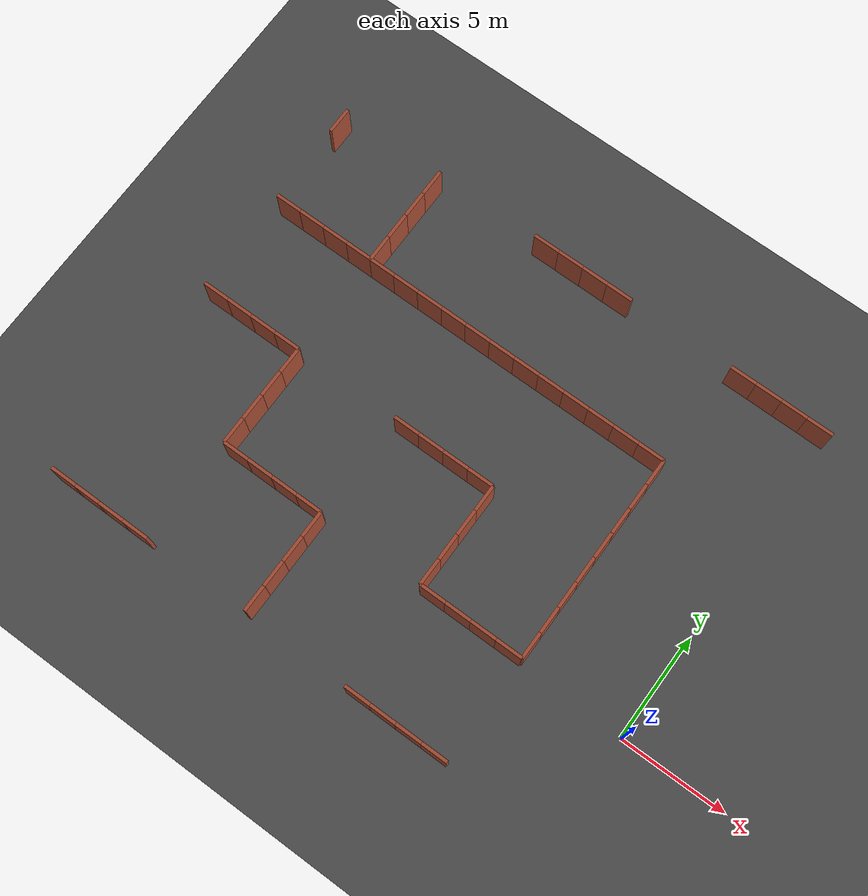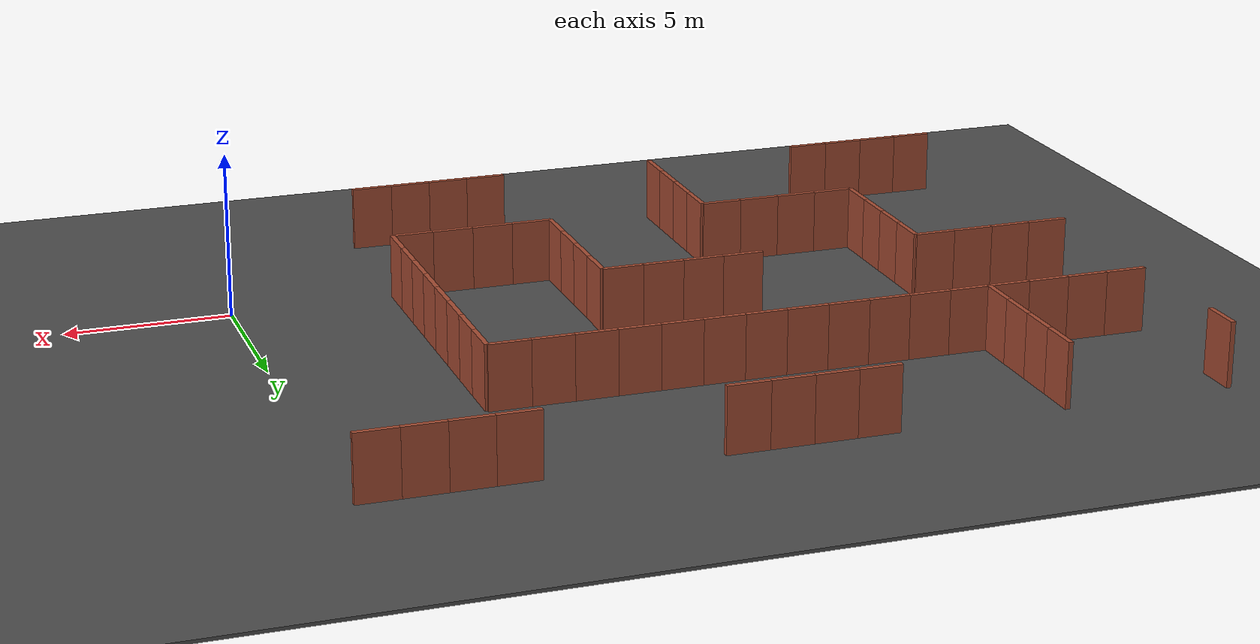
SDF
<sdf version="1.6">
 <world name="default">
  <model name="ground_plane">
   <static>1</static>
   <link name="link">
    <collision name="collision">
     <geometry><plane><normal>0 0 1</normal><size>100 100</size></plane></geometry>
     <surface><friction><ode><mu>100</mu><mu2>50</mu2></ode></friction></surface>
    </collision>
    <visual name="visual">
     <cast_shadows>0</cast_shadows>
     <geometry><plane><normal>0 0 1</normal><size>100 100</size></plane></geometry>
     <material>
      <script><uri>file://media/materials/scripts/gazebo.material</uri><name>Gazebo/Grey</name></script>
     </material>
    </visual>
   </link>
  </model>
  <model name="asphalt_plane">
   <static>1</static>
   <link name="link">
    <collision name="collision"><geometry><box><size>100 100 0.1</size></box></geometry></collision>
    <visual name="visual">
     <cast_shadows>0</cast_shadows>
     <geometry><box><size>100 100 0.1</size></box></geometry>
     <material>
      <script>
       <uri>model://asphalt_plane/materials/scripts</uri>
       <uri>model://asphalt_plane/materials/textures</uri>
       <name>vrc/asphalt</name>
      </script>
     </material>
    </visual>
   </link>
  </model>
  <model name="brick_wall_10_18_vertical1">
   <pose>-24.375 -5 0 0 -0 0</pose>
   <link name="Wall_0">
    <collision name="Wall_0_Collision">
     <geometry><box><size>1.25 0.15 2</size></box></geometry>
     <pose>0 0 1 0 -0 0</pose>
    </collision>
    <visual name="Wall_0_Visual">
     <pose>0 0 1 0 -0 0</pose>
     <geometry><box><size>1.25 0.15 2</size></box></geometry>
     <material>
      <script><uri>file://media/materials/scripts/gazebo.material</uri><name>Gazebo/Bricks</name></script>
      <ambient>1 1 1 1</ambient>
     </material>
     <meta><layer>0</layer></meta>
    </visual>
   </link>
   <static>1</static>
  </model>
  <model name="brick_wall_10_22_vertical1">
   <pose>-24.375 5 0 0 -0 0</pose>
   <link name="Wall_0">
    <collision name="Wall_0_Collision">
     <geometry><box><size>1.25 0.15 2</size></box></geometry>
     <pose>0 0 1 0 -0 0</pose>
    </collision>
    <visual name="Wall_0_Visual">
     <pose>0 0 1 0 -0 0</pose>
     <geometry><box><size>1.25 0.15 2</size></box></geometry>
     <material>
      <script><uri>file://media/materials/scripts/gazebo.material</uri><name>Gazebo/Bricks</name></script>
      <ambient>1 1 1 1</ambient>
     </material>
     <meta><layer>0</layer></meta>
    </visual>
   </link>
   <static>1</static>
  </model>
  <model name="brick_wall_10_24_vertical1">
   <pose>-24.375 10 0 0 -0 0</pose>
   <link name="Wall_0">
    <collision name="Wall_0_Collision">
     <geometry><box><size>1.25 0.15 2</size></box></geometry>
     <pose>0 0 1 0 -0 0</pose>
    </collision>
    <visual name="Wall_0_Visual">
     <pose>0 0 1 0 -0 0</pose>
     <geometry><box><size>1.25 0.15 2</size></box></geometry>
     <material>
      <script><uri>file://media/materials/scripts/gazebo.material</uri><name>Gazebo/Bricks</name></script>
      <ambient>1 1 1 1</ambient>
     </material>
     <meta><layer>0</layer></meta>
    </visual>
   </link>
   <static>1</static>
  </model>
  <model name="brick_wall_10_26_horizontal2">
   <pose>-25 14.375 0 0 -0 1.5708</pose>
   <link name="Wall_0">
    <collision name="Wall_0_Collision">
     <geometry><box><size>1.25 0.15 2</size></box></geometry>
     <pose>0 0 1 0 -0 0</pose>
    </collision>
    <visual name="Wall_0_Visual">
     <pose>0 0 1 0 -0 0</pose>
     <geometry><box><size>1.25 0.15 2</size></box></geometry>
     <material>
      <script><uri>file://media/materials/scripts/gazebo.material</uri><name>Gazebo/Bricks</name></script>
      <ambient>1 1 1 1</ambient>
     </material>
     <meta><layer>0</layer></meta>
    </visual>
   </link>
   <static>1</static>
  </model>
  <model name="brick_wall_11_18_vertical1">
   <pose>-21.875 -5 0 0 -0 0</pose>
   <link name="Wall_0">
    <collision name="Wall_0_Collision">
     <geometry><box><size>1.25 0.15 2</size></box></geometry>
     <pose>0 0 1 0 -0 0</pose>
    </collision>
    <visual name="Wall_0_Visual">
     <pose>0 0 1 0 -0 0</pose>
     <geometry><box><size>1.25 0.15 2</size></box></geometry>
     <material>
      <script><uri>file://media/materials/scripts/gazebo.material</uri><name>Gazebo/Bricks</name></script>
      <ambient>1 1 1 1</ambient>
     </material>
     <meta><layer>0</layer></meta>
    </visual>
   </link>
   <static>1</static>
  </model>
  <model name="brick_wall_11_18_vertical2">
   <pose>-23.125 -5 0 0 -0 0</pose>
   <link name="Wall_0">
    <collision name="Wall_0_Collision">
     <geometry><box><size>1.25 0.15 2</size></box></geometry>
     <pose>0 0 1 0 -0 0</pose>
    </collision>
    <visual name="Wall_0_Visual">
     <pose>0 0 1 0 -0 0</pose>
     <geometry><box><size>1.25 0.15 2</size></box></geometry>
     <material>
      <script><uri>file://media/materials/scripts/gazebo.material</uri><name>Gazebo/Bricks</name></script>
      <ambient>1 1 1 1</ambient>
     </material>
     <meta><layer>0</layer></meta>
    </visual>
   </link>
   <static>1</static>
  </model>
  <model name="brick_wall_11_22_vertical1">
   <pose>-21.875 5 0 0 -0 0</pose>
   <link name="Wall_0">
    <collision name="Wall_0_Collision">
     <geometry><box><size>1.25 0.15 2</size></box></geometry>
     <pose>0 0 1 0 -0 0</pose>
    </collision>
    <visual name="Wall_0_Visual">
     <pose>0 0 1 0 -0 0</pose>
     <geometry><box><size>1.25 0.15 2</size></box></geometry>
     <material>
      <script><uri>file://media/materials/scripts/gazebo.material</uri><name>Gazebo/Bricks</name></script>
      <ambient>1 1 1 1</ambient>
     </material>
     <meta><layer>0</layer></meta>
    </visual>
   </link>
   <static>1</static>
  </model>
  <model name="brick_wall_11_22_vertical2">
   <pose>-23.125 5 0 0 -0 0</pose>
   <link name="Wall_0">
    <collision name="Wall_0_Collision">
     <geometry><box><size>1.25 0.15 2</size></box></geometry>
     <pose>0 0 1 0 -0 0</pose>
    </collision>
    <visual name="Wall_0_Visual">
     <pose>0 0 1 0 -0 0</pose>
     <geometry><box><size>1.25 0.15 2</size></box></geometry>
     <material>
      <script><uri>file://media/materials/scripts/gazebo.material</uri><name>Gazebo/Bricks</name></script>
      <ambient>1 1 1 1</ambient>
     </material>
     <meta><layer>0</layer></meta>
    </visual>
   </link>
   <static>1</static>
  </model>
  <model name="brick_wall_11_24_vertical1">
   <pose>-21.875 10 0 0 -0 0</pose>
   <link name="Wall_0">
    <collision name="Wall_0_Collision">
     <geometry><box><size>1.25 0.15 2</size></box></geometry>
     <pose>0 0 1 0 -0 0</pose>
    </collision>
    <visual name="Wall_0_Visual">
     <pose>0 0 1 0 -0 0</pose>
     <geometry><box><size>1.25 0.15 2</size></box></geometry>
     <material>
      <script><uri>file://media/materials/scripts/gazebo.material</uri><name>Gazebo/Bricks</name></script>
      <ambient>1 1 1 1</ambient>
     </material>
     <meta><layer>0</layer></meta>
    </visual>
   </link>
   <static>1</static>
  </model>
  <model name="brick_wall_11_24_vertical2">
   <pose>-23.125 10 0 0 -0 0</pose>
   <link name="Wall_0">
    <collision name="Wall_0_Collision">
     <geometry><box><size>1.25 0.15 2</size></box></geometry>
     <pose>0 0 1 0 -0 0</pose>
    </collision>
    <visual name="Wall_0_Visual">
     <pose>0 0 1 0 -0 0</pose>
     <geometry><box><size>1.25 0.15 2</size></box></geometry>
     <material>
      <script><uri>file://media/materials/scripts/gazebo.material</uri><name>Gazebo/Bricks</name></script>
      <ambient>1 1 1 1</ambient>
     </material>
     <meta><layer>0</layer></meta>
    </visual>
   </link>
   <static>1</static>
  </model>
  <model name="brick_wall_12_18_vertical2">
   <pose>-20.625 -5 0 0 -0 0</pose>
   <link name="Wall_0">
    <collision name="Wall_0_Collision">
     <geometry><box><size>1.25 0.15 2</size></box></geometry>
     <pose>0 0 1 0 -0 0</pose>
    </collision>
    <visual name="Wall_0_Visual">
     <pose>0 0 1 0 -0 0</pose>
     <geometry><box><size>1.25 0.15 2</size></box></geometry>
     <material>
      <script><uri>file://media/materials/scripts/gazebo.material</uri><name>Gazebo/Bricks</name></script>
      <ambient>1 1 1 1</ambient>
     </material>
     <meta><layer>0</layer></meta>
    </visual>
   </link>
   <static>1</static>
  </model>
  <model name="brick_wall_12_20_vertical1">
   <pose>-19.375 0 0 0 -0 0</pose>
   <link name="Wall_0">
    <collision name="Wall_0_Collision">
     <geometry><box><size>1.25 0.15 2</size></box></geometry>
     <pose>0 0 1 0 -0 0</pose>
    </collision>
    <visual name="Wall_0_Visual">
     <pose>0 0 1 0 -0 0</pose>
     <geometry><box><size>1.25 0.15 2</size></box></geometry>
     <material>
      <script><uri>file://media/materials/scripts/gazebo.material</uri><name>Gazebo/Bricks</name></script>
      <ambient>1 1 1 1</ambient>
     </material>
     <meta><layer>0</layer></meta>
    </visual>
   </link>
   <static>1</static>
  </model>
  <model name="brick_wall_12_20_horizontal1">
   <pose>-20 0.625 0 0 -0 1.5708</pose>
   <link name="Wall_0">
    <collision name="Wall_0_Collision">
     <geometry><box><size>1.25 0.15 2</size></box></geometry>
     <pose>0 0 1 0 -0 0</pose>
    </collision>
    <visual name="Wall_0_Visual">
     <pose>0 0 1 0 -0 0</pose>
     <geometry><box><size>1.25 0.15 2</size></box></geometry>
     <material>
      <script><uri>file://media/materials/scripts/gazebo.material</uri><name>Gazebo/Bricks</name></script>
      <ambient>1 1 1 1</ambient>
     </material>
     <meta><layer>0</layer></meta>
    </visual>
   </link>
   <static>1</static>
  </model>
  <model name="brick_wall_12_21_horizontal1">
   <pose>-20 3.125 0 0 -0 1.5708</pose>
   <link name="Wall_0">
    <collision name="Wall_0_Collision">
     <geometry><box><size>1.25 0.15 2</size></box></geometry>
     <pose>0 0 1 0 -0 0</pose>
    </collision>
    <visual name="Wall_0_Visual">
     <pose>0 0 1 0 -0 0</pose>
     <geometry><box><size>1.25 0.15 2</size></box></geometry>
     <material>
      <script><uri>file://media/materials/scripts/gazebo.material</uri><name>Gazebo/Bricks</name></script>
      <ambient>1 1 1 1</ambient>
     </material>
     <meta><layer>0</layer></meta>
    </visual>
   </link>
   <static>1</static>
  </model>
  <model name="brick_wall_12_21_horizontal2">
   <pose>-20 1.875 0 0 -0 1.5708</pose>
   <link name="Wall_0">
    <collision name="Wall_0_Collision">
     <geometry><box><size>1.25 0.15 2</size></box></geometry>
     <pose>0 0 1 0 -0 0</pose>
    </collision>
    <visual name="Wall_0_Visual">
     <pose>0 0 1 0 -0 0</pose>
     <geometry><box><size>1.25 0.15 2</size></box></geometry>
     <material>
      <script><uri>file://media/materials/scripts/gazebo.material</uri><name>Gazebo/Bricks</name></script>
      <ambient>1 1 1 1</ambient>
     </material>
     <meta><layer>0</layer></meta>
    </visual>
   </link>
   <static>1</static>
  </model>
  <model name="brick_wall_12_22_vertical2">
   <pose>-20.625 5 0 0 -0 0</pose>
   <link name="Wall_0">
    <collision name="Wall_0_Collision">
     <geometry><box><size>1.25 0.15 2</size></box></geometry>
     <pose>0 0 1 0 -0 0</pose>
    </collision>
    <visual name="Wall_0_Visual">
     <pose>0 0 1 0 -0 0</pose>
     <geometry><box><size>1.25 0.15 2</size></box></geometry>
     <material>
      <script><uri>file://media/materials/scripts/gazebo.material</uri><name>Gazebo/Bricks</name></script>
      <ambient>1 1 1 1</ambient>
     </material>
     <meta><layer>0</layer></meta>
    </visual>
   </link>
   <static>1</static>
  </model>
  <model name="brick_wall_12_22_horizontal2">
   <pose>-20 4.375 0 0 -0 1.5708</pose>
   <link name="Wall_0">
    <collision name="Wall_0_Collision">
     <geometry><box><size>1.25 0.15 2</size></box></geometry>
     <pose>0 0 1 0 -0 0</pose>
    </collision>
    <visual name="Wall_0_Visual">
     <pose>0 0 1 0 -0 0</pose>
     <geometry><box><size>1.25 0.15 2</size></box></geometry>
     <material>
      <script><uri>file://media/materials/scripts/gazebo.material</uri><name>Gazebo/Bricks</name></script>
      <ambient>1 1 1 1</ambient>
     </material>
     <meta><layer>0</layer></meta>
    </visual>
   </link>
   <static>1</static>
  </model>
  <model name="brick_wall_12_24_vertical1">
   <pose>-19.375 10 0 0 -0 0</pose>
   <link name="Wall_0">
    <collision name="Wall_0_Collision">
     <geometry><box><size>1.25 0.15 2</size></box></geometry>
     <pose>0 0 1 0 -0 0</pose>
    </collision>
    <visual name="Wall_0_Visual">
     <pose>0 0 1 0 -0 0</pose>
     <geometry><box><size>1.25 0.15 2</size></box></geometry>
     <material>
      <script><uri>file://media/materials/scripts/gazebo.material</uri><name>Gazebo/Bricks</name></script>
      <ambient>1 1 1 1</ambient>
     </material>
     <meta><layer>0</layer></meta>
    </visual>
   </link>
   <static>1</static>
  </model>
  <model name="brick_wall_12_24_vertical2">
   <pose>-20.625 10 0 0 -0 0</pose>
   <link name="Wall_0">
    <collision name="Wall_0_Collision">
     <geometry><box><size>1.25 0.15 2</size></box></geometry>
     <pose>0 0 1 0 -0 0</pose>
    </collision>
    <visual name="Wall_0_Visual">
     <pose>0 0 1 0 -0 0</pose>
     <geometry><box><size>1.25 0.15 2</size></box></geometry>
     <material>
      <script><uri>file://media/materials/scripts/gazebo.material</uri><name>Gazebo/Bricks</name></script>
      <ambient>1 1 1 1</ambient>
     </material>
     <meta><layer>0</layer></meta>
    </visual>
   </link>
   <static>1</static>
  </model>
  <model name="brick_wall_12_24_horizontal1">
   <pose>-20 10.625 0 0 -0 1.5708</pose>
   <link name="Wall_0">
    <collision name="Wall_0_Collision">
     <geometry><box><size>1.25 0.15 2</size></box></geometry>
     <pose>0 0 1 0 -0 0</pose>
    </collision>
    <visual name="Wall_0_Visual">
     <pose>0 0 1 0 -0 0</pose>
     <geometry><box><size>1.25 0.15 2</size></box></geometry>
     <material>
      <script><uri>file://media/materials/scripts/gazebo.material</uri><name>Gazebo/Bricks</name></script>
      <ambient>1 1 1 1</ambient>
     </material>
     <meta><layer>0</layer></meta>
    </visual>
   </link>
   <static>1</static>
  </model>
  <model name="brick_wall_12_25_horizontal1">
   <pose>-20 13.125 0 0 -0 1.5708</pose>
   <link name="Wall_0">
    <collision name="Wall_0_Collision">
     <geometry><box><size>1.25 0.15 2</size></box></geometry>
     <pose>0 0 1 0 -0 0</pose>
    </collision>
    <visual name="Wall_0_Visual">
     <pose>0 0 1 0 -0 0</pose>
     <geometry><box><size>1.25 0.15 2</size></box></geometry>
     <material>
      <script><uri>file://media/materials/scripts/gazebo.material</uri><name>Gazebo/Bricks</name></script>
      <ambient>1 1 1 1</ambient>
     </material>
     <meta><layer>0</layer></meta>
    </visual>
   </link>
   <static>1</static>
  </model>
  <model name="brick_wall_12_25_horizontal2">
   <pose>-20 11.875 0 0 -0 1.5708</pose>
   <link name="Wall_0">
    <collision name="Wall_0_Collision">
     <geometry><box><size>1.25 0.15 2</size></box></geometry>
     <pose>0 0 1 0 -0 0</pose>
    </collision>
    <visual name="Wall_0_Visual">
     <pose>0 0 1 0 -0 0</pose>
     <geometry><box><size>1.25 0.15 2</size></box></geometry>
     <material>
      <script><uri>file://media/materials/scripts/gazebo.material</uri><name>Gazebo/Bricks</name></script>
      <ambient>1 1 1 1</ambient>
     </material>
     <meta><layer>0</layer></meta>
    </visual>
   </link>
   <static>1</static>
  </model>
  <model name="brick_wall_12_26_horizontal2">
   <pose>-20 14.375 0 0 -0 1.5708</pose>
   <link name="Wall_0">
    <collision name="Wall_0_Collision">
     <geometry><box><size>1.25 0.15 2</size></box></geometry>
     <pose>0 0 1 0 -0 0</pose>
    </collision>
    <visual name="Wall_0_Visual">
     <pose>0 0 1 0 -0 0</pose>
     <geometry><box><size>1.25 0.15 2</size></box></geometry>
     <material>
      <script><uri>file://media/materials/scripts/gazebo.material</uri><name>Gazebo/Bricks</name></script>
      <ambient>1 1 1 1</ambient>
     </material>
     <meta><layer>0</layer></meta>
    </visual>
   </link>
   <static>1</static>
  </model>
  <model name="brick_wall_13_20_vertical1">
   <pose>-16.875 0 0 0 -0 0</pose>
   <link name="Wall_0">
    <collision name="Wall_0_Collision">
     <geometry><box><size>1.25 0.15 2</size></box></geometry>
     <pose>0 0 1 0 -0 0</pose>
    </collision>
    <visual name="Wall_0_Visual">
     <pose>0 0 1 0 -0 0</pose>
     <geometry><box><size>1.25 0.15 2</size></box></geometry>
     <material>
      <script><uri>file://media/materials/scripts/gazebo.material</uri><name>Gazebo/Bricks</name></script>
      <ambient>1 1 1 1</ambient>
     </material>
     <meta><layer>0</layer></meta>
    </visual>
   </link>
   <static>1</static>
  </model>
  <model name="brick_wall_13_20_vertical2">
   <pose>-18.125 0 0 0 -0 0</pose>
   <link name="Wall_0">
    <collision name="Wall_0_Collision">
     <geometry><box><size>1.25 0.15 2</size></box></geometry>
     <pose>0 0 1 0 -0 0</pose>
    </collision>
    <visual name="Wall_0_Visual">
     <pose>0 0 1 0 -0 0</pose>
     <geometry><box><size>1.25 0.15 2</size></box></geometry>
     <material>
      <script><uri>file://media/materials/scripts/gazebo.material</uri><name>Gazebo/Bricks</name></script>
      <ambient>1 1 1 1</ambient>
     </material>
     <meta><layer>0</layer></meta>
    </visual>
   </link>
   <static>1</static>
  </model>
  <model name="brick_wall_13_24_vertical1">
   <pose>-16.875 10 0 0 -0 0</pose>
   <link name="Wall_0">
    <collision name="Wall_0_Collision">
     <geometry><box><size>1.25 0.15 2</size></box></geometry>
     <pose>0 0 1 0 -0 0</pose>
    </collision>
    <visual name="Wall_0_Visual">
     <pose>0 0 1 0 -0 0</pose>
     <geometry><box><size>1.25 0.15 2</size></box></geometry>
     <material>
      <script><uri>file://media/materials/scripts/gazebo.material</uri><name>Gazebo/Bricks</name></script>
      <ambient>1 1 1 1</ambient>
     </material>
     <meta><layer>0</layer></meta>
    </visual>
   </link>
   <static>1</static>
  </model>
  <model name="brick_wall_13_24_vertical2">
   <pose>-18.125 10 0 0 -0 0</pose>
   <link name="Wall_0">
    <collision name="Wall_0_Collision">
     <geometry><box><size>1.25 0.15 2</size></box></geometry>
     <pose>0 0 1 0 -0 0</pose>
    </collision>
    <visual name="Wall_0_Visual">
     <pose>0 0 1 0 -0 0</pose>
     <geometry><box><size>1.25 0.15 2</size></box></geometry>
     <material>
      <script><uri>file://media/materials/scripts/gazebo.material</uri><name>Gazebo/Bricks</name></script>
      <ambient>1 1 1 1</ambient>
     </material>
     <meta><layer>0</layer></meta>
    </visual>
   </link>
   <static>1</static>
  </model>
  <model name="brick_wall_14_18_horizontal1">
   <pose>-15 -4.375 0 0 -0 1.5708</pose>
   <link name="Wall_0">
    <collision name="Wall_0_Collision">
     <geometry><box><size>1.25 0.15 2</size></box></geometry>
     <pose>0 0 1 0 -0 0</pose>
    </collision>
    <visual name="Wall_0_Visual">
     <pose>0 0 1 0 -0 0</pose>
     <geometry><box><size>1.25 0.15 2</size></box></geometry>
     <material>
      <script><uri>file://media/materials/scripts/gazebo.material</uri><name>Gazebo/Bricks</name></script>
      <ambient>1 1 1 1</ambient>
     </material>
     <meta><layer>0</layer></meta>
    </visual>
   </link>
   <static>1</static>
  </model>
  <model name="brick_wall_14_19_horizontal1">
   <pose>-15 -1.875 0 0 -0 1.5708</pose>
   <link name="Wall_0">
    <collision name="Wall_0_Collision">
     <geometry><box><size>1.25 0.15 2</size></box></geometry>
     <pose>0 0 1 0 -0 0</pose>
    </collision>
    <visual name="Wall_0_Visual">
     <pose>0 0 1 0 -0 0</pose>
     <geometry><box><size>1.25 0.15 2</size></box></geometry>
     <material>
      <script><uri>file://media/materials/scripts/gazebo.material</uri><name>Gazebo/Bricks</name></script>
      <ambient>1 1 1 1</ambient>
     </material>
     <meta><layer>0</layer></meta>
    </visual>
   </link>
   <static>1</static>
  </model>
  <model name="brick_wall_14_19_horizontal2">
   <pose>-15 -3.125 0 0 -0 1.5708</pose>
   <link name="Wall_0">
    <collision name="Wall_0_Collision">
     <geometry><box><size>1.25 0.15 2</size></box></geometry>
     <pose>0 0 1 0 -0 0</pose>
    </collision>
    <visual name="Wall_0_Visual">
     <pose>0 0 1 0 -0 0</pose>
     <geometry><box><size>1.25 0.15 2</size></box></geometry>
     <material>
      <script><uri>file://media/materials/scripts/gazebo.material</uri><name>Gazebo/Bricks</name></script>
      <ambient>1 1 1 1</ambient>
     </material>
     <meta><layer>0</layer></meta>
    </visual>
   </link>
   <static>1</static>
  </model>
  <model name="brick_wall_14_20_vertical2">
   <pose>-15.625 0 0 0 -0 0</pose>
   <link name="Wall_0">
    <collision name="Wall_0_Collision">
     <geometry><box><size>1.25 0.15 2</size></box></geometry>
     <pose>0 0 1 0 -0 0</pose>
    </collision>
    <visual name="Wall_0_Visual">
     <pose>0 0 1 0 -0 0</pose>
     <geometry><box><size>1.25 0.15 2</size></box></geometry>
     <material>
      <script><uri>file://media/materials/scripts/gazebo.material</uri><name>Gazebo/Bricks</name></script>
      <ambient>1 1 1 1</ambient>
     </material>
     <meta><layer>0</layer></meta>
    </visual>
   </link>
   <static>1</static>
  </model>
  <model name="brick_wall_14_20_horizontal2">
   <pose>-15 -0.625 0 0 -0 1.5708</pose>
   <link name="Wall_0">
    <collision name="Wall_0_Collision">
     <geometry><box><size>1.25 0.15 2</size></box></geometry>
     <pose>0 0 1 0 -0 0</pose>
    </collision>
    <visual name="Wall_0_Visual">
     <pose>0 0 1 0 -0 0</pose>
     <geometry><box><size>1.25 0.15 2</size></box></geometry>
     <material>
      <script><uri>file://media/materials/scripts/gazebo.material</uri><name>Gazebo/Bricks</name></script>
      <ambient>1 1 1 1</ambient>
     </material>
     <meta><layer>0</layer></meta>
    </visual>
   </link>
   <static>1</static>
  </model>
  <model name="brick_wall_14_22_vertical1">
   <pose>-14.375 5 0 0 -0 0</pose>
   <link name="Wall_0">
    <collision name="Wall_0_Collision">
     <geometry><box><size>1.25 0.15 2</size></box></geometry>
     <pose>0 0 1 0 -0 0</pose>
    </collision>
    <visual name="Wall_0_Visual">
     <pose>0 0 1 0 -0 0</pose>
     <geometry><box><size>1.25 0.15 2</size></box></geometry>
     <material>
      <script><uri>file://media/materials/scripts/gazebo.material</uri><name>Gazebo/Bricks</name></script>
      <ambient>1 1 1 1</ambient>
     </material>
     <meta><layer>0</layer></meta>
    </visual>
   </link>
   <static>1</static>
  </model>
  <model name="brick_wall_14_24_vertical1">
   <pose>-14.375 10 0 0 -0 0</pose>
   <link name="Wall_0">
    <collision name="Wall_0_Collision">
     <geometry><box><size>1.25 0.15 2</size></box></geometry>
     <pose>0 0 1 0 -0 0</pose>
    </collision>
    <visual name="Wall_0_Visual">
     <pose>0 0 1 0 -0 0</pose>
     <geometry><box><size>1.25 0.15 2</size></box></geometry>
     <material>
      <script><uri>file://media/materials/scripts/gazebo.material</uri><name>Gazebo/Bricks</name></script>
      <ambient>1 1 1 1</ambient>
     </material>
     <meta><layer>0</layer></meta>
    </visual>
   </link>
   <static>1</static>
  </model>
  <model name="brick_wall_14_24_vertical2">
   <pose>-15.625 10 0 0 -0 0</pose>
   <link name="Wall_0">
    <collision name="Wall_0_Collision">
     <geometry><box><size>1.25 0.15 2</size></box></geometry>
     <pose>0 0 1 0 -0 0</pose>
    </collision>
    <visual name="Wall_0_Visual">
     <pose>0 0 1 0 -0 0</pose>
     <geometry><box><size>1.25 0.15 2</size></box></geometry>
     <material>
      <script><uri>file://media/materials/scripts/gazebo.material</uri><name>Gazebo/Bricks</name></script>
      <ambient>1 1 1 1</ambient>
     </material>
     <meta><layer>0</layer></meta>
    </visual>
   </link>
   <static>1</static>
  </model>
  <model name="brick_wall_14_26_vertical1">
   <pose>-14.375 15 0 0 -0 0</pose>
   <link name="Wall_0">
    <collision name="Wall_0_Collision">
     <geometry><box><size>1.25 0.15 2</size></box></geometry>
     <pose>0 0 1 0 -0 0</pose>
    </collision>
    <visual name="Wall_0_Visual">
     <pose>0 0 1 0 -0 0</pose>
     <geometry><box><size>1.25 0.15 2</size></box></geometry>
     <material>
      <script><uri>file://media/materials/scripts/gazebo.material</uri><name>Gazebo/Bricks</name></script>
      <ambient>1 1 1 1</ambient>
     </material>
     <meta><layer>0</layer></meta>
    </visual>
   </link>
   <static>1</static>
  </model>
  <model name="brick_wall_15_22_vertical1">
   <pose>-11.875 5 0 0 -0 0</pose>
   <link name="Wall_0">
    <collision name="Wall_0_Collision">
     <geometry><box><size>1.25 0.15 2</size></box></geometry>
     <pose>0 0 1 0 -0 0</pose>
    </collision>
    <visual name="Wall_0_Visual">
     <pose>0 0 1 0 -0 0</pose>
     <geometry><box><size>1.25 0.15 2</size></box></geometry>
     <material>
      <script><uri>file://media/materials/scripts/gazebo.material</uri><name>Gazebo/Bricks</name></script>
      <ambient>1 1 1 1</ambient>
     </material>
     <meta><layer>0</layer></meta>
    </visual>
   </link>
   <static>1</static>
  </model>
  <model name="brick_wall_15_22_vertical2">
   <pose>-13.125 5 0 0 -0 0</pose>
   <link name="Wall_0">
    <collision name="Wall_0_Collision">
     <geometry><box><size>1.25 0.15 2</size></box></geometry>
     <pose>0 0 1 0 -0 0</pose>
    </collision>
    <visual name="Wall_0_Visual">
     <pose>0 0 1 0 -0 0</pose>
     <geometry><box><size>1.25 0.15 2</size></box></geometry>
     <material>
      <script><uri>file://media/materials/scripts/gazebo.material</uri><name>Gazebo/Bricks</name></script>
      <ambient>1 1 1 1</ambient>
     </material>
     <meta><layer>0</layer></meta>
    </visual>
   </link>
   <static>1</static>
  </model>
  <model name="brick_wall_15_24_vertical1">
   <pose>-11.875 10 0 0 -0 0</pose>
   <link name="Wall_0">
    <collision name="Wall_0_Collision">
     <geometry><box><size>1.25 0.15 2</size></box></geometry>
     <pose>0 0 1 0 -0 0</pose>
    </collision>
    <visual name="Wall_0_Visual">
     <pose>0 0 1 0 -0 0</pose>
     <geometry><box><size>1.25 0.15 2</size></box></geometry>
     <material>
      <script><uri>file://media/materials/scripts/gazebo.material</uri><name>Gazebo/Bricks</name></script>
      <ambient>1 1 1 1</ambient>
     </material>
     <meta><layer>0</layer></meta>
    </visual>
   </link>
   <static>1</static>
  </model>
  <model name="brick_wall_15_24_vertical2">
   <pose>-13.125 10 0 0 -0 0</pose>
   <link name="Wall_0">
    <collision name="Wall_0_Collision">
     <geometry><box><size>1.25 0.15 2</size></box></geometry>
     <pose>0 0 1 0 -0 0</pose>
    </collision>
    <visual name="Wall_0_Visual">
     <pose>0 0 1 0 -0 0</pose>
     <geometry><box><size>1.25 0.15 2</size></box></geometry>
     <material>
      <script><uri>file://media/materials/scripts/gazebo.material</uri><name>Gazebo/Bricks</name></script>
      <ambient>1 1 1 1</ambient>
     </material>
     <meta><layer>0</layer></meta>
    </visual>
   </link>
   <static>1</static>
  </model>
  <model name="brick_wall_15_26_vertical1">
   <pose>-11.875 15 0 0 -0 0</pose>
   <link name="Wall_0">
    <collision name="Wall_0_Collision">
     <geometry><box><size>1.25 0.15 2</size></box></geometry>
     <pose>0 0 1 0 -0 0</pose>
    </collision>
    <visual name="Wall_0_Visual">
     <pose>0 0 1 0 -0 0</pose>
     <geometry><box><size>1.25 0.15 2</size></box></geometry>
     <material>
      <script><uri>file://media/materials/scripts/gazebo.material</uri><name>Gazebo/Bricks</name></script>
      <ambient>1 1 1 1</ambient>
     </material>
     <meta><layer>0</layer></meta>
    </visual>
   </link>
   <static>1</static>
  </model>
  <model name="brick_wall_15_26_vertical2">
   <pose>-13.125 15 0 0 -0 0</pose>
   <link name="Wall_0">
    <collision name="Wall_0_Collision">
     <geometry><box><size>1.25 0.15 2</size></box></geometry>
     <pose>0 0 1 0 -0 0</pose>
    </collision>
    <visual name="Wall_0_Visual">
     <pose>0 0 1 0 -0 0</pose>
     <geometry><box><size>1.25 0.15 2</size></box></geometry>
     <material>
      <script><uri>file://media/materials/scripts/gazebo.material</uri><name>Gazebo/Bricks</name></script>
      <ambient>1 1 1 1</ambient>
     </material>
     <meta><layer>0</layer></meta>
    </visual>
   </link>
   <static>1</static>
  </model>
  <model name="brick_wall_16_18_vertical1">
   <pose>-9.375 -5 0 0 -0 0</pose>
   <link name="Wall_0">
    <collision name="Wall_0_Collision">
     <geometry><box><size>1.25 0.15 2</size></box></geometry>
     <pose>0 0 1 0 -0 0</pose>
    </collision>
    <visual name="Wall_0_Visual">
     <pose>0 0 1 0 -0 0</pose>
     <geometry><box><size>1.25 0.15 2</size></box></geometry>
     <material>
      <script><uri>file://media/materials/scripts/gazebo.material</uri><name>Gazebo/Bricks</name></script>
      <ambient>1 1 1 1</ambient>
     </material>
     <meta><layer>0</layer></meta>
    </visual>
   </link>
   <static>1</static>
  </model>
  <model name="brick_wall_16_20_vertical1">
   <pose>-9.375 0 0 0 -0 0</pose>
   <link name="Wall_0">
    <collision name="Wall_0_Collision">
     <geometry><box><size>1.25 0.15 2</size></box></geometry>
     <pose>0 0 1 0 -0 0</pose>
    </collision>
    <visual name="Wall_0_Visual">
     <pose>0 0 1 0 -0 0</pose>
     <geometry><box><size>1.25 0.15 2</size></box></geometry>
     <material>
      <script><uri>file://media/materials/scripts/gazebo.material</uri><name>Gazebo/Bricks</name></script>
      <ambient>1 1 1 1</ambient>
     </material>
     <meta><layer>0</layer></meta>
    </visual>
   </link>
   <static>1</static>
  </model>
  <model name="brick_wall_16_20_horizontal1">
   <pose>-10 0.625 0 0 -0 1.5708</pose>
   <link name="Wall_0">
    <collision name="Wall_0_Collision">
     <geometry><box><size>1.25 0.15 2</size></box></geometry>
     <pose>0 0 1 0 -0 0</pose>
    </collision>
    <visual name="Wall_0_Visual">
     <pose>0 0 1 0 -0 0</pose>
     <geometry><box><size>1.25 0.15 2</size></box></geometry>
     <material>
      <script><uri>file://media/materials/scripts/gazebo.material</uri><name>Gazebo/Bricks</name></script>
      <ambient>1 1 1 1</ambient>
     </material>
     <meta><layer>0</layer></meta>
    </visual>
   </link>
   <static>1</static>
  </model>
  <model name="brick_wall_16_21_horizontal1">
   <pose>-10 3.125 0 0 -0 1.5708</pose>
   <link name="Wall_0">
    <collision name="Wall_0_Collision">
     <geometry><box><size>1.25 0.15 2</size></box></geometry>
     <pose>0 0 1 0 -0 0</pose>
    </collision>
    <visual name="Wall_0_Visual">
     <pose>0 0 1 0 -0 0</pose>
     <geometry><box><size>1.25 0.15 2</size></box></geometry>
     <material>
      <script><uri>file://media/materials/scripts/gazebo.material</uri><name>Gazebo/Bricks</name></script>
      <ambient>1 1 1 1</ambient>
     </material>
     <meta><layer>0</layer></meta>
    </visual>
   </link>
   <static>1</static>
  </model>
  <model name="brick_wall_16_21_horizontal2">
   <pose>-10 1.875 0 0 -0 1.5708</pose>
   <link name="Wall_0">
    <collision name="Wall_0_Collision">
     <geometry><box><size>1.25 0.15 2</size></box></geometry>
     <pose>0 0 1 0 -0 0</pose>
    </collision>
    <visual name="Wall_0_Visual">
     <pose>0 0 1 0 -0 0</pose>
     <geometry><box><size>1.25 0.15 2</size></box></geometry>
     <material>
      <script><uri>file://media/materials/scripts/gazebo.material</uri><name>Gazebo/Bricks</name></script>
      <ambient>1 1 1 1</ambient>
     </material>
     <meta><layer>0</layer></meta>
    </visual>
   </link>
   <static>1</static>
  </model>
  <model name="brick_wall_16_22_vertical2">
   <pose>-10.625 5 0 0 -0 0</pose>
   <link name="Wall_0">
    <collision name="Wall_0_Collision">
     <geometry><box><size>1.25 0.15 2</size></box></geometry>
     <pose>0 0 1 0 -0 0</pose>
    </collision>
    <visual name="Wall_0_Visual">
     <pose>0 0 1 0 -0 0</pose>
     <geometry><box><size>1.25 0.15 2</size></box></geometry>
     <material>
      <script><uri>file://media/materials/scripts/gazebo.material</uri><name>Gazebo/Bricks</name></script>
      <ambient>1 1 1 1</ambient>
     </material>
     <meta><layer>0</layer></meta>
    </visual>
   </link>
   <static>1</static>
  </model>
  <model name="brick_wall_16_22_horizontal2">
   <pose>-10 4.375 0 0 -0 1.5708</pose>
   <link name="Wall_0">
    <collision name="Wall_0_Collision">
     <geometry><box><size>1.25 0.15 2</size></box></geometry>
     <pose>0 0 1 0 -0 0</pose>
    </collision>
    <visual name="Wall_0_Visual">
     <pose>0 0 1 0 -0 0</pose>
     <geometry><box><size>1.25 0.15 2</size></box></geometry>
     <material>
      <script><uri>file://media/materials/scripts/gazebo.material</uri><name>Gazebo/Bricks</name></script>
      <ambient>1 1 1 1</ambient>
     </material>
     <meta><layer>0</layer></meta>
    </visual>
   </link>
   <static>1</static>
  </model>
  <model name="brick_wall_16_24_vertical1">
   <pose>-9.375 10 0 0 -0 0</pose>
   <link name="Wall_0">
    <collision name="Wall_0_Collision">
     <geometry><box><size>1.25 0.15 2</size></box></geometry>
     <pose>0 0 1 0 -0 0</pose>
    </collision>
    <visual name="Wall_0_Visual">
     <pose>0 0 1 0 -0 0</pose>
     <geometry><box><size>1.25 0.15 2</size></box></geometry>
     <material>
      <script><uri>file://media/materials/scripts/gazebo.material</uri><name>Gazebo/Bricks</name></script>
      <ambient>1 1 1 1</ambient>
     </material>
     <meta><layer>0</layer></meta>
    </visual>
   </link>
   <static>1</static>
  </model>
  <model name="brick_wall_16_24_vertical2">
   <pose>-10.625 10 0 0 -0 0</pose>
   <link name="Wall_0">
    <collision name="Wall_0_Collision">
     <geometry><box><size>1.25 0.15 2</size></box></geometry>
     <pose>0 0 1 0 -0 0</pose>
    </collision>
    <visual name="Wall_0_Visual">
     <pose>0 0 1 0 -0 0</pose>
     <geometry><box><size>1.25 0.15 2</size></box></geometry>
     <material>
      <script><uri>file://media/materials/scripts/gazebo.material</uri><name>Gazebo/Bricks</name></script>
      <ambient>1 1 1 1</ambient>
     </material>
     <meta><layer>0</layer></meta>
    </visual>
   </link>
   <static>1</static>
  </model>
  <model name="brick_wall_16_26_vertical2">
   <pose>-10.625 15 0 0 -0 0</pose>
   <link name="Wall_0">
    <collision name="Wall_0_Collision">
     <geometry><box><size>1.25 0.15 2</size></box></geometry>
     <pose>0 0 1 0 -0 0</pose>
    </collision>
    <visual name="Wall_0_Visual">
     <pose>0 0 1 0 -0 0</pose>
     <geometry><box><size>1.25 0.15 2</size></box></geometry>
     <material>
      <script><uri>file://media/materials/scripts/gazebo.material</uri><name>Gazebo/Bricks</name></script>
      <ambient>1 1 1 1</ambient>
     </material>
     <meta><layer>0</layer></meta>
    </visual>
   </link>
   <static>1</static>
  </model>
  <model name="brick_wall_17_18_vertical1">
   <pose>-6.875 -5 0 0 -0 0</pose>
   <link name="Wall_0">
    <collision name="Wall_0_Collision">
     <geometry><box><size>1.25 0.15 2</size></box></geometry>
     <pose>0 0 1 0 -0 0</pose>
    </collision>
    <visual name="Wall_0_Visual">
     <pose>0 0 1 0 -0 0</pose>
     <geometry><box><size>1.25 0.15 2</size></box></geometry>
     <material>
      <script><uri>file://media/materials/scripts/gazebo.material</uri><name>Gazebo/Bricks</name></script>
      <ambient>1 1 1 1</ambient>
     </material>
     <meta><layer>0</layer></meta>
    </visual>
   </link>
   <static>1</static>
  </model>
  <model name="brick_wall_17_18_vertical2">
   <pose>-8.125 -5 0 0 -0 0</pose>
   <link name="Wall_0">
    <collision name="Wall_0_Collision">
     <geometry><box><size>1.25 0.15 2</size></box></geometry>
     <pose>0 0 1 0 -0 0</pose>
    </collision>
    <visual name="Wall_0_Visual">
     <pose>0 0 1 0 -0 0</pose>
     <geometry><box><size>1.25 0.15 2</size></box></geometry>
     <material>
      <script><uri>file://media/materials/scripts/gazebo.material</uri><name>Gazebo/Bricks</name></script>
      <ambient>1 1 1 1</ambient>
     </material>
     <meta><layer>0</layer></meta>
    </visual>
   </link>
   <static>1</static>
  </model>
  <model name="brick_wall_17_20_vertical1">
   <pose>-6.875 0 0 0 -0 0</pose>
   <link name="Wall_0">
    <collision name="Wall_0_Collision">
     <geometry><box><size>1.25 0.15 2</size></box></geometry>
     <pose>0 0 1 0 -0 0</pose>
    </collision>
    <visual name="Wall_0_Visual">
     <pose>0 0 1 0 -0 0</pose>
     <geometry><box><size>1.25 0.15 2</size></box></geometry>
     <material>
      <script><uri>file://media/materials/scripts/gazebo.material</uri><name>Gazebo/Bricks</name></script>
      <ambient>1 1 1 1</ambient>
     </material>
     <meta><layer>0</layer></meta>
    </visual>
   </link>
   <static>1</static>
  </model>
  <model name="brick_wall_17_20_vertical2">
   <pose>-8.125 0 0 0 -0 0</pose>
   <link name="Wall_0">
    <collision name="Wall_0_Collision">
     <geometry><box><size>1.25 0.15 2</size></box></geometry>
     <pose>0 0 1 0 -0 0</pose>
    </collision>
    <visual name="Wall_0_Visual">
     <pose>0 0 1 0 -0 0</pose>
     <geometry><box><size>1.25 0.15 2</size></box></geometry>
     <material>
      <script><uri>file://media/materials/scripts/gazebo.material</uri><name>Gazebo/Bricks</name></script>
      <ambient>1 1 1 1</ambient>
     </material>
     <meta><layer>0</layer></meta>
    </visual>
   </link>
   <static>1</static>
  </model>
  <model name="brick_wall_17_24_vertical1">
   <pose>-6.875 10 0 0 -0 0</pose>
   <link name="Wall_0">
    <collision name="Wall_0_Collision">
     <geometry><box><size>1.25 0.15 2</size></box></geometry>
     <pose>0 0 1 0 -0 0</pose>
    </collision>
    <visual name="Wall_0_Visual">
     <pose>0 0 1 0 -0 0</pose>
     <geometry><box><size>1.25 0.15 2</size></box></geometry>
     <material>
      <script><uri>file://media/materials/scripts/gazebo.material</uri><name>Gazebo/Bricks</name></script>
      <ambient>1 1 1 1</ambient>
     </material>
     <meta><layer>0</layer></meta>
    </visual>
   </link>
   <static>1</static>
  </model>
  <model name="brick_wall_17_24_vertical2">
   <pose>-8.125 10 0 0 -0 0</pose>
   <link name="Wall_0">
    <collision name="Wall_0_Collision">
     <geometry><box><size>1.25 0.15 2</size></box></geometry>
     <pose>0 0 1 0 -0 0</pose>
    </collision>
    <visual name="Wall_0_Visual">
     <pose>0 0 1 0 -0 0</pose>
     <geometry><box><size>1.25 0.15 2</size></box></geometry>
     <material>
      <script><uri>file://media/materials/scripts/gazebo.material</uri><name>Gazebo/Bricks</name></script>
      <ambient>1 1 1 1</ambient>
     </material>
     <meta><layer>0</layer></meta>
    </visual>
   </link>
   <static>1</static>
  </model>
  <model name="brick_wall_18_18_vertical2">
   <pose>-5.625 -5 0 0 -0 0</pose>
   <link name="Wall_0">
    <collision name="Wall_0_Collision">
     <geometry><box><size>1.25 0.15 2</size></box></geometry>
     <pose>0 0 1 0 -0 0</pose>
    </collision>
    <visual name="Wall_0_Visual">
     <pose>0 0 1 0 -0 0</pose>
     <geometry><box><size>1.25 0.15 2</size></box></geometry>
     <material>
      <script><uri>file://media/materials/scripts/gazebo.material</uri><name>Gazebo/Bricks</name></script>
      <ambient>1 1 1 1</ambient>
     </material>
     <meta><layer>0</layer></meta>
    </visual>
   </link>
   <static>1</static>
  </model>
  <model name="brick_wall_18_20_vertical2">
   <pose>-5.625 0 0 0 -0 0</pose>
   <link name="Wall_0">
    <collision name="Wall_0_Collision">
     <geometry><box><size>1.25 0.15 2</size></box></geometry>
     <pose>0 0 1 0 -0 0</pose>
    </collision>
    <visual name="Wall_0_Visual">
     <pose>0 0 1 0 -0 0</pose>
     <geometry><box><size>1.25 0.15 2</size></box></geometry>
     <material>
      <script><uri>file://media/materials/scripts/gazebo.material</uri><name>Gazebo/Bricks</name></script>
      <ambient>1 1 1 1</ambient>
     </material>
     <meta><layer>0</layer></meta>
    </visual>
   </link>
   <static>1</static>
  </model>
  <model name="brick_wall_18_20_horizontal1">
   <pose>-5 0.625 0 0 -0 1.5708</pose>
   <link name="Wall_0">
    <collision name="Wall_0_Collision">
     <geometry><box><size>1.25 0.15 2</size></box></geometry>
     <pose>0 0 1 0 -0 0</pose>
    </collision>
    <visual name="Wall_0_Visual">
     <pose>0 0 1 0 -0 0</pose>
     <geometry><box><size>1.25 0.15 2</size></box></geometry>
     <material>
      <script><uri>file://media/materials/scripts/gazebo.material</uri><name>Gazebo/Bricks</name></script>
      <ambient>1 1 1 1</ambient>
     </material>
     <meta><layer>0</layer></meta>
    </visual>
   </link>
   <static>1</static>
  </model>
  <model name="brick_wall_18_21_horizontal1">
   <pose>-5 3.125 0 0 -0 1.5708</pose>
   <link name="Wall_0">
    <collision name="Wall_0_Collision">
     <geometry><box><size>1.25 0.15 2</size></box></geometry>
     <pose>0 0 1 0 -0 0</pose>
    </collision>
    <visual name="Wall_0_Visual">
     <pose>0 0 1 0 -0 0</pose>
     <geometry><box><size>1.25 0.15 2</size></box></geometry>
     <material>
      <script><uri>file://media/materials/scripts/gazebo.material</uri><name>Gazebo/Bricks</name></script>
      <ambient>1 1 1 1</ambient>
     </material>
     <meta><layer>0</layer></meta>
    </visual>
   </link>
   <static>1</static>
  </model>
  <model name="brick_wall_18_21_horizontal2">
   <pose>-5 1.875 0 0 -0 1.5708</pose>
   <link name="Wall_0">
    <collision name="Wall_0_Collision">
     <geometry><box><size>1.25 0.15 2</size></box></geometry>
     <pose>0 0 1 0 -0 0</pose>
    </collision>
    <visual name="Wall_0_Visual">
     <pose>0 0 1 0 -0 0</pose>
     <geometry><box><size>1.25 0.15 2</size></box></geometry>
     <material>
      <script><uri>file://media/materials/scripts/gazebo.material</uri><name>Gazebo/Bricks</name></script>
      <ambient>1 1 1 1</ambient>
     </material>
     <meta><layer>0</layer></meta>
    </visual>
   </link>
   <static>1</static>
  </model>
  <model name="brick_wall_18_22_horizontal1">
   <pose>-5 5.625 0 0 -0 1.5708</pose>
   <link name="Wall_0">
    <collision name="Wall_0_Collision">
     <geometry><box><size>1.25 0.15 2</size></box></geometry>
     <pose>0 0 1 0 -0 0</pose>
    </collision>
    <visual name="Wall_0_Visual">
     <pose>0 0 1 0 -0 0</pose>
     <geometry><box><size>1.25 0.15 2</size></box></geometry>
     <material>
      <script><uri>file://media/materials/scripts/gazebo.material</uri><name>Gazebo/Bricks</name></script>
      <ambient>1 1 1 1</ambient>
     </material>
     <meta><layer>0</layer></meta>
    </visual>
   </link>
   <static>1</static>
  </model>
  <model name="brick_wall_18_22_horizontal2">
   <pose>-5 4.375 0 0 -0 1.5708</pose>
   <link name="Wall_0">
    <collision name="Wall_0_Collision">
     <geometry><box><size>1.25 0.15 2</size></box></geometry>
     <pose>0 0 1 0 -0 0</pose>
    </collision>
    <visual name="Wall_0_Visual">
     <pose>0 0 1 0 -0 0</pose>
     <geometry><box><size>1.25 0.15 2</size></box></geometry>
     <material>
      <script><uri>file://media/materials/scripts/gazebo.material</uri><name>Gazebo/Bricks</name></script>
      <ambient>1 1 1 1</ambient>
     </material>
     <meta><layer>0</layer></meta>
    </visual>
   </link>
   <static>1</static>
  </model>
  <model name="brick_wall_18_23_horizontal1">
   <pose>-5 8.125 0 0 -0 1.5708</pose>
   <link name="Wall_0">
    <collision name="Wall_0_Collision">
     <geometry><box><size>1.25 0.15 2</size></box></geometry>
     <pose>0 0 1 0 -0 0</pose>
    </collision>
    <visual name="Wall_0_Visual">
     <pose>0 0 1 0 -0 0</pose>
     <geometry><box><size>1.25 0.15 2</size></box></geometry>
     <material>
      <script><uri>file://media/materials/scripts/gazebo.material</uri><name>Gazebo/Bricks</name></script>
      <ambient>1 1 1 1</ambient>
     </material>
     <meta><layer>0</layer></meta>
    </visual>
   </link>
   <static>1</static>
  </model>
  <model name="brick_wall_18_23_horizontal2">
   <pose>-5 6.875 0 0 -0 1.5708</pose>
   <link name="Wall_0">
    <collision name="Wall_0_Collision">
     <geometry><box><size>1.25 0.15 2</size></box></geometry>
     <pose>0 0 1 0 -0 0</pose>
    </collision>
    <visual name="Wall_0_Visual">
     <pose>0 0 1 0 -0 0</pose>
     <geometry><box><size>1.25 0.15 2</size></box></geometry>
     <material>
      <script><uri>file://media/materials/scripts/gazebo.material</uri><name>Gazebo/Bricks</name></script>
      <ambient>1 1 1 1</ambient>
     </material>
     <meta><layer>0</layer></meta>
    </visual>
   </link>
   <static>1</static>
  </model>
  <model name="brick_wall_18_24_vertical2">
   <pose>-5.625 10 0 0 -0 0</pose>
   <link name="Wall_0">
    <collision name="Wall_0_Collision">
     <geometry><box><size>1.25 0.15 2</size></box></geometry>
     <pose>0 0 1 0 -0 0</pose>
    </collision>
    <visual name="Wall_0_Visual">
     <pose>0 0 1 0 -0 0</pose>
     <geometry><box><size>1.25 0.15 2</size></box></geometry>
     <material>
      <script><uri>file://media/materials/scripts/gazebo.material</uri><name>Gazebo/Bricks</name></script>
      <ambient>1 1 1 1</ambient>
     </material>
     <meta><layer>0</layer></meta>
    </visual>
   </link>
   <static>1</static>
  </model>
  <model name="brick_wall_18_24_horizontal2">
   <pose>-5 9.375 0 0 -0 1.5708</pose>
   <link name="Wall_0">
    <collision name="Wall_0_Collision">
     <geometry><box><size>1.25 0.15 2</size></box></geometry>
     <pose>0 0 1 0 -0 0</pose>
    </collision>
    <visual name="Wall_0_Visual">
     <pose>0 0 1 0 -0 0</pose>
     <geometry><box><size>1.25 0.15 2</size></box></geometry>
     <material>
      <script><uri>file://media/materials/scripts/gazebo.material</uri><name>Gazebo/Bricks</name></script>
      <ambient>1 1 1 1</ambient>
     </material>
     <meta><layer>0</layer></meta>
    </visual>
   </link>
   <static>1</static>
  </model>
  <model name="brick_wall_18_26_vertical1">
   <pose>-4.375 15 0 0 -0 0</pose>
   <link name="Wall_0">
    <collision name="Wall_0_Collision">
     <geometry><box><size>1.25 0.15 2</size></box></geometry>
     <pose>0 0 1 0 -0 0</pose>
    </collision>
    <visual name="Wall_0_Visual">
     <pose>0 0 1 0 -0 0</pose>
     <geometry><box><size>1.25 0.15 2</size></box></geometry>
     <material>
      <script><uri>file://media/materials/scripts/gazebo.material</uri><name>Gazebo/Bricks</name></script>
      <ambient>1 1 1 1</ambient>
     </material>
     <meta><layer>0</layer></meta>
    </visual>
   </link>
   <static>1</static>
  </model>
  <model name="brick_wall_19_26_vertical1">
   <pose>-1.875 15 0 0 -0 0</pose>
   <link name="Wall_0">
    <collision name="Wall_0_Collision">
     <geometry><box><size>1.25 0.15 2</size></box></geometry>
     <pose>0 0 1 0 -0 0</pose>
    </collision>
    <visual name="Wall_0_Visual">
     <pose>0 0 1 0 -0 0</pose>
     <geometry><box><size>1.25 0.15 2</size></box></geometry>
     <material>
      <script><uri>file://media/materials/scripts/gazebo.material</uri><name>Gazebo/Bricks</name></script>
      <ambient>1 1 1 1</ambient>
     </material>
     <meta><layer>0</layer></meta>
    </visual>
   </link>
   <static>1</static>
  </model>
  <model name="brick_wall_19_26_vertical2">
   <pose>-3.125 15 0 0 -0 0</pose>
   <link name="Wall_0">
    <collision name="Wall_0_Collision">
     <geometry><box><size>1.25 0.15 2</size></box></geometry>
     <pose>0 0 1 0 -0 0</pose>
    </collision>
    <visual name="Wall_0_Visual">
     <pose>0 0 1 0 -0 0</pose>
     <geometry><box><size>1.25 0.15 2</size></box></geometry>
     <material>
      <script><uri>file://media/materials/scripts/gazebo.material</uri><name>Gazebo/Bricks</name></script>
      <ambient>1 1 1 1</ambient>
     </material>
     <meta><layer>0</layer></meta>
    </visual>
   </link>
   <static>1</static>
  </model>
  <model name="brick_wall_20_26_vertical2">
   <pose>-0.625 15 0 0 -0 0</pose>
   <link name="Wall_0">
    <collision name="Wall_0_Collision">
     <geometry><box><size>1.25 0.15 2</size></box></geometry>
     <pose>0 0 1 0 -0 0</pose>
    </collision>
    <visual name="Wall_0_Visual">
     <pose>0 0 1 0 -0 0</pose>
     <geometry><box><size>1.25 0.15 2</size></box></geometry>
     <material>
      <script><uri>file://media/materials/scripts/gazebo.material</uri><name>Gazebo/Bricks</name></script>
      <ambient>1 1 1 1</ambient>
     </material>
     <meta><layer>0</layer></meta>
    </visual>
   </link>
   <static>1</static>
  </model>
 </world>
</sdf>
